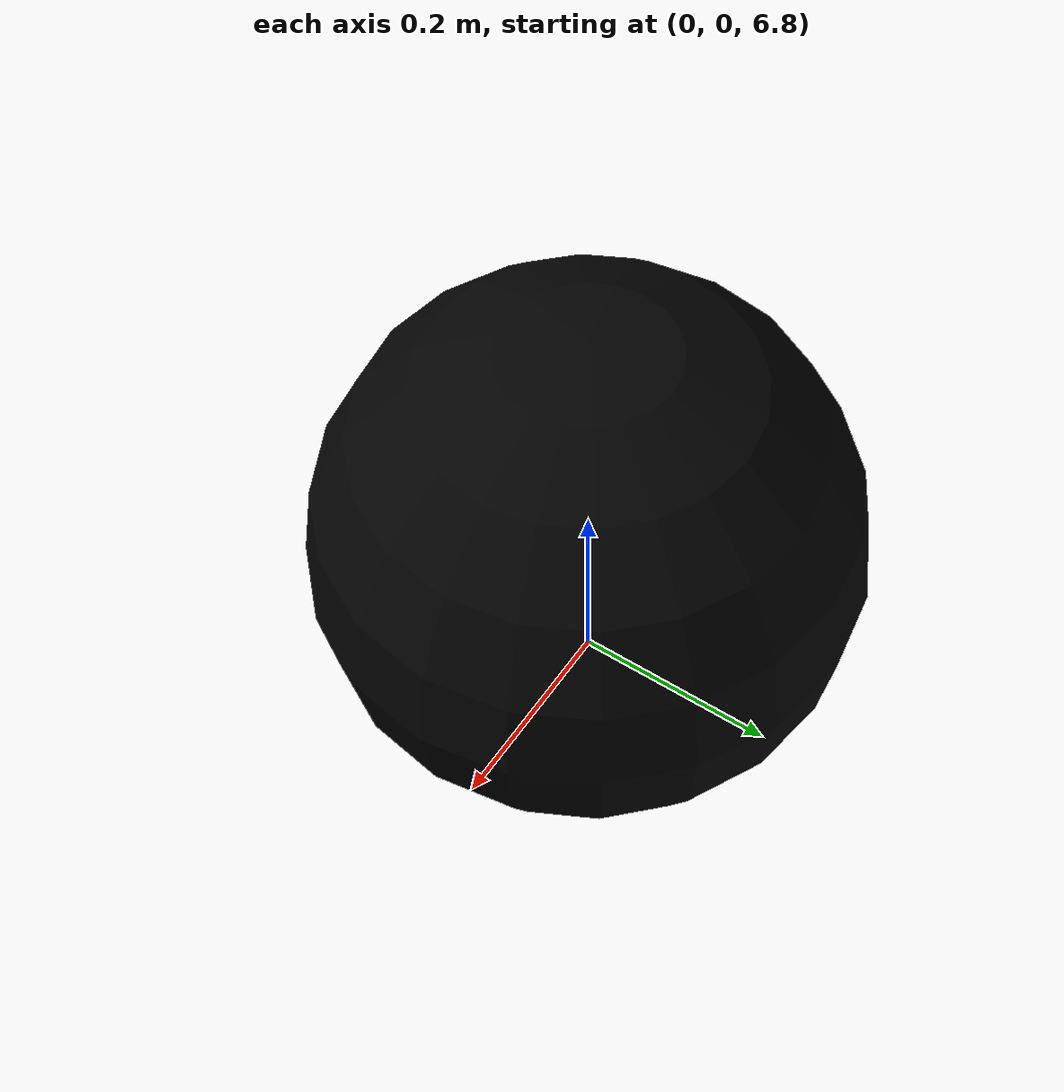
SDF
<?xml version="1.0"?>
<sdf version="1.10">
  <model name="target_uav">
    <pose>0 0 7 0 0 0</pose>
    <link name="target_link">
      <inertial><mass>1.0</mass><inertia><ixx>0.03</ixx><iyy>0.03</iyy><izz>0.05</izz><ixy>0</ixy><ixz>0</ixz><iyz>0</iyz></inertia></inertial>
      <gravity>false</gravity>
      <collision name="body_collision"><geometry><box><size>0.30 0.18 0.08</size></box></geometry></collision>
      <!-- Deterministic rendered-SIL detector stimulus only. It exercises the
           pixel detector path but is not detector-accuracy or target-size evidence. -->
      <visual name="single_target_detector_stimulus">
        <pose>0 0 -0.025 0 0 0</pose>
        <geometry><sphere><radius>0.26</radius></sphere></geometry>
        <material><diffuse>0.01 0.01 0.01 1</diffuse><specular>0 0 0 1</specular></material>
      </visual>
    </link>
    <plugin filename="libPngBetaflightSilBridge.so" name="png::sitl::DeterministicTargetMotion">
      <eastAmplitudeM>1.2</eastAmplitudeM>
      <northAmplitudeM>0.6</northAmplitudeM>
      <periodS>8</periodS>
      <verticalApproachStartS>7.5</verticalApproachStartS>
      <verticalApproachSpeedMps>10.0</verticalApproachSpeedMps>
      <maximumVerticalApproachM>5.95</maximumVerticalApproachM>
      <horizontalApproachDecayS>1.5</horizontalApproachDecayS>
      <cameraAlignmentStartS>5.8</cameraAlignmentStartS>
      <cameraAlignmentBlendS>0.5</cameraAlignmentBlendS>
      <interceptorModelName>interceptor</interceptorModelName>
      <cameraOffsetBodyFluM>0.06</cameraOffsetBodyFluM>
      <interceptorInitialHeightM>0.16</interceptorInitialHeightM>
    </plugin>
    <plugin filename="gz-sim-pose-publisher-system" name="gz::sim::systems::PosePublisher">
      <publish_link_pose>false</publish_link_pose>
      <publish_model_pose>true</publish_model_pose>
      <publish_collision_pose>false</publish_collision_pose>
      <publish_visual_pose>false</publish_visual_pose>
      <publish_sensor_pose>false</publish_sensor_pose>
      <publish_nested_model_pose>false</publish_nested_model_pose>
      <update_frequency>50</update_frequency>
      <use_pose_vector_msg>true</use_pose_vector_msg>
    </plugin>
  </model>
</sdf>
